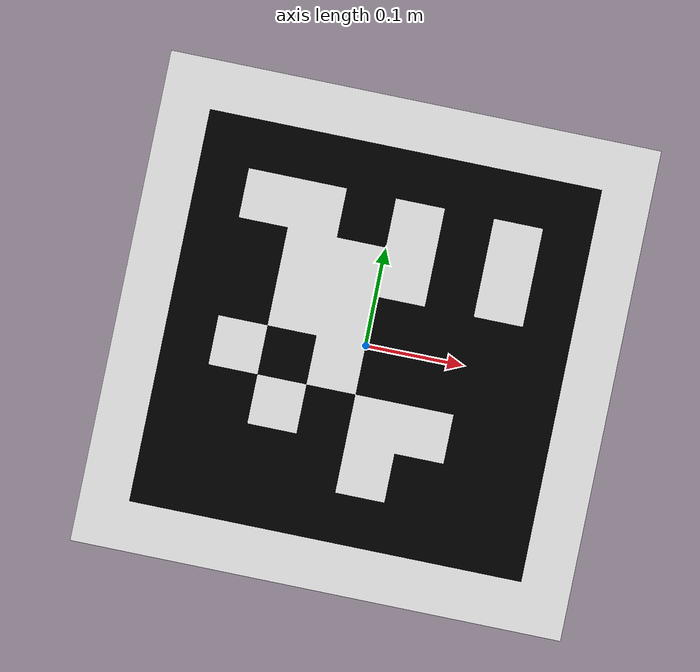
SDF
<?xml version="1.0" ?>

<sdf version="1.6">
  <model name="apriltag_0">
    <static>true</static>
    <link name="link">
      <visual name="visual">
        <geometry>
          <mesh>
            <uri>model://apriltag_0/meshes/apriltag_0.dae</uri>
          <scale>1.0 1.0 1.0</scale></mesh>
        </geometry>
      </visual>
    </link>
  </model>
</sdf>
